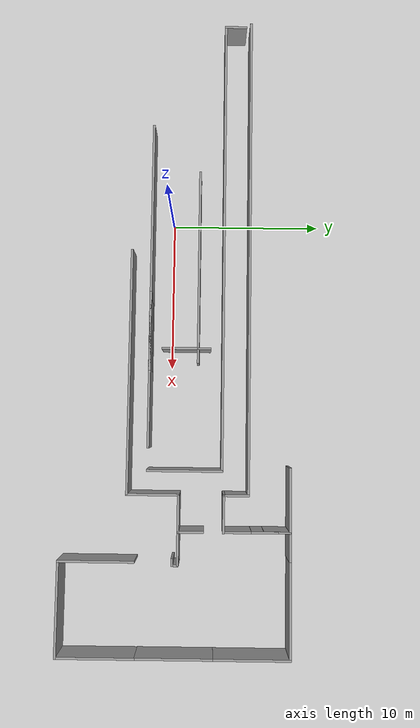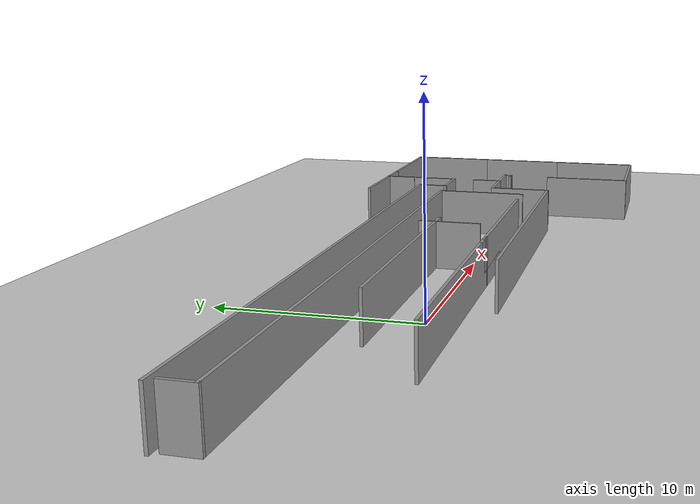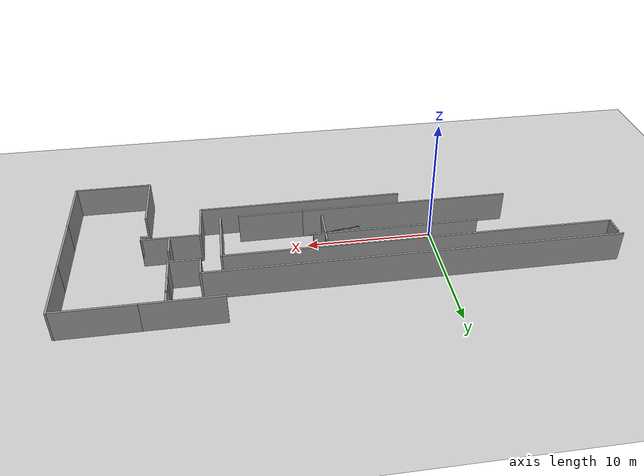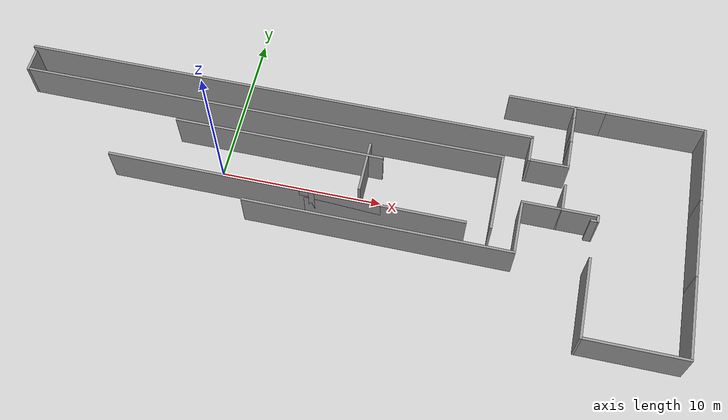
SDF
<sdf version="1.6">
 <world name="default">
  <model name="ground_plane">
   <static>1</static>
   <link name="link">
    <collision name="collision">
     <geometry><plane><normal>0 0 1</normal><size>100 100</size></plane></geometry>
     <surface><friction><ode><mu>100</mu><mu2>50</mu2></ode></friction></surface>
    </collision>
    <visual name="visual">
     <cast_shadows>0</cast_shadows>
     <geometry><plane><normal>0 0 1</normal><size>100 100</size></plane></geometry>
     <material>
      <script><uri>file://media/materials/scripts/gazebo.material</uri><name>Gazebo/Grey</name></script>
     </material>
    </visual>
   </link>
  </model>
  <model name="Untitled">
   <link name="Wall_20">
    <pose>4.30407 -0.225441 0 0 -0 1.5708</pose>
    <visual name="Wall_20_Visual">
     <pose>0 0 1.25 0 -0 0</pose>
     <geometry><box><size>3.25 0.15 2.5</size></box></geometry>
     <material>
      <script><uri>file://media/materials/scripts/gazebo.material</uri><name>Gazebo/Grey</name></script>
      <ambient>1 1 1 1</ambient>
      <shader type="pixel"/>
      <diffuse>0.7 0.7 0.7 1</diffuse>
      <specular>0.01 0.01 0.01 1</specular>
      <emissive>0 0 0 1</emissive>
     </material>
     <meta><layer>0</layer></meta>
    </visual>
    <collision name="Wall_20_Collision">
     <pose>0 0 1.25 0 -0 0</pose>
     <geometry><box><size>3.25 0.15 2.5</size></box></geometry>
     <surface>
      <friction>
       <ode><mu>1</mu><mu2>1</mu2><fdir1>0 0 0</fdir1><slip1>0</slip1><slip2>0</slip2></ode>
       <torsional>
        <coefficient>1</coefficient>
        <patch_radius>0</patch_radius>
        <surface_radius>0</surface_radius>
        <use_patch_radius>1</use_patch_radius>
        <ode><slip>0</slip></ode>
       </torsional>
      </friction>
      <bounce><restitution_coefficient>0</restitution_coefficient><threshold>1e+06</threshold></bounce>
      <contact>
       <collide_without_contact>0</collide_without_contact>
       <collide_without_contact_bitmask>1</collide_without_contact_bitmask>
       <collide_bitmask>1</collide_bitmask>
       <ode>
        <soft_cfm>0</soft_cfm>
        <soft_erp>0.2</soft_erp>
        <kp>1e+13</kp>
        <kd>1</kd>
        <max_vel>0.01</max_vel>
        <min_depth>0</min_depth>
       </ode>
       <bullet>
        <split_impulse>1</split_impulse>
        <split_impulse_penetration_threshold>-0.01</split_impulse_penetration_threshold>
        <soft_cfm>0</soft_cfm>
        <soft_erp>0.2</soft_erp>
        <kp>1e+13</kp>
        <kd>1</kd>
       </bullet>
      </contact>
     </surface>
    </collision>
   </link>
   <link name="Wall_21">
    <pose>-1.22907 0.549559 0 0 -0 3.14159</pose>
    <visual name="Wall_21_Visual">
     <pose>0 0 1.25 0 -0 0</pose>
     <geometry><box><size>13 0.15 2.5</size></box></geometry>
     <material>
      <script><uri>file://media/materials/scripts/gazebo.material</uri><name>Gazebo/Grey</name></script>
      <ambient>1 1 1 1</ambient>
      <shader type="pixel"/>
      <diffuse>0.7 0.7 0.7 1</diffuse>
      <specular>0.01 0.01 0.01 1</specular>
      <emissive>0 0 0 1</emissive>
     </material>
     <meta><layer>0</layer></meta>
    </visual>
    <collision name="Wall_21_Collision">
     <pose>0 0 1.25 0 -0 0</pose>
     <geometry><box><size>13 0.15 2.5</size></box></geometry>
     <surface>
      <friction>
       <ode><mu>1</mu><mu2>1</mu2><fdir1>0 0 0</fdir1><slip1>0</slip1><slip2>0</slip2></ode>
       <torsional>
        <coefficient>1</coefficient>
        <patch_radius>0</patch_radius>
        <surface_radius>0</surface_radius>
        <use_patch_radius>1</use_patch_radius>
        <ode><slip>0</slip></ode>
       </torsional>
      </friction>
      <bounce><restitution_coefficient>0</restitution_coefficient><threshold>1e+06</threshold></bounce>
      <contact>
       <collide_without_contact>0</collide_without_contact>
       <collide_without_contact_bitmask>1</collide_without_contact_bitmask>
       <collide_bitmask>1</collide_bitmask>
       <ode>
        <soft_cfm>0</soft_cfm>
        <soft_erp>0.2</soft_erp>
        <kp>1e+13</kp>
        <kd>1</kd>
        <max_vel>0.01</max_vel>
        <min_depth>0</min_depth>
       </ode>
       <bullet>
        <split_impulse>1</split_impulse>
        <split_impulse_penetration_threshold>-0.01</split_impulse_penetration_threshold>
        <soft_cfm>0</soft_cfm>
        <soft_erp>0.2</soft_erp>
        <kp>1e+13</kp>
        <kd>1</kd>
       </bullet>
      </contact>
     </surface>
    </collision>
   </link>
   <link name="Wall_24">
    <pose>-4.22907 -2.65044 0 0 -0 0</pose>
    <visual name="Wall_24_Visual_1">
     <pose>5.82444 0 1.25 0 -0 0</pose>
     <geometry><box><size>0.351111 0.15 2.5</size></box></geometry>
     <material>
      <script><uri>file://media/materials/scripts/gazebo.material</uri><name>Gazebo/Grey</name></script>
      <ambient>1 1 1 1</ambient>
      <shader type="pixel"/>
      <diffuse>0.7 0.7 0.7 1</diffuse>
      <specular>0.01 0.01 0.01 1</specular>
      <emissive>0 0 0 1</emissive>
     </material>
     <meta><layer>0</layer></meta>
    </visual>
    <visual name="Wall_24_Visual_2">
     <pose>5.19889 0 2.25 0 -0 0</pose>
     <geometry><box><size>0.9 0.15 0.5</size></box></geometry>
     <material>
      <script><uri>file://media/materials/scripts/gazebo.material</uri><name>Gazebo/Grey</name></script>
      <ambient>1 1 1 1</ambient>
      <shader type="pixel"/>
      <diffuse>0.7 0.7 0.7 1</diffuse>
      <specular>0.01 0.01 0.01 1</specular>
      <emissive>0 0 0 1</emissive>
     </material>
     <meta><layer>0</layer></meta>
    </visual>
    <visual name="Wall_24_Visual_0">
     <pose>1.625555 0 1.25 0 -0 0</pose>
     <geometry><box><size>16.74889 0.15 2.5</size></box></geometry>
     <material>
      <script><uri>file://media/materials/scripts/gazebo.material</uri><name>Gazebo/Grey</name></script>
      <ambient>1 1 1 1</ambient>
      <shader type="pixel"/>
      <diffuse>0.7 0.7 0.7 1</diffuse>
      <specular>0.01 0.01 0.01 1</specular>
      <emissive>0 0 0 1</emissive>
     </material>
     <meta><layer>0</layer></meta>
    </visual>
    <collision name="Wall_24_Collision_2">
     <pose>5.19889 0 2.25 0 -0 0</pose>
     <geometry><box><size>0.9 0.15 0.5</size></box></geometry>
     <surface>
      <friction>
       <ode><mu>1</mu><mu2>1</mu2><fdir1>0 0 0</fdir1><slip1>0</slip1><slip2>0</slip2></ode>
       <torsional>
        <coefficient>1</coefficient>
        <patch_radius>0</patch_radius>
        <surface_radius>0</surface_radius>
        <use_patch_radius>1</use_patch_radius>
        <ode><slip>0</slip></ode>
       </torsional>
      </friction>
      <bounce><restitution_coefficient>0</restitution_coefficient><threshold>1e+06</threshold></bounce>
      <contact>
       <collide_without_contact>0</collide_without_contact>
       <collide_without_contact_bitmask>1</collide_without_contact_bitmask>
       <collide_bitmask>1</collide_bitmask>
       <ode>
        <soft_cfm>0</soft_cfm>
        <soft_erp>0.2</soft_erp>
        <kp>1e+13</kp>
        <kd>1</kd>
        <max_vel>0.01</max_vel>
        <min_depth>0</min_depth>
       </ode>
       <bullet>
        <split_impulse>1</split_impulse>
        <split_impulse_penetration_threshold>-0.01</split_impulse_penetration_threshold>
        <soft_cfm>0</soft_cfm>
        <soft_erp>0.2</soft_erp>
        <kp>1e+13</kp>
        <kd>1</kd>
       </bullet>
      </contact>
     </surface>
    </collision>
    <collision name="Wall_24_Collision_0">
     <pose>1.625555 0 1.25 0 -0 0</pose>
     <geometry><box><size>16.74889 0.15 2.5</size></box></geometry>
     <surface>
      <friction>
       <ode><mu>1</mu><mu2>1</mu2><fdir1>0 0 0</fdir1><slip1>0</slip1><slip2>0</slip2></ode>
       <torsional>
        <coefficient>1</coefficient>
        <patch_radius>0</patch_radius>
        <surface_radius>0</surface_radius>
        <use_patch_radius>1</use_patch_radius>
        <ode><slip>0</slip></ode>
       </torsional>
      </friction>
      <bounce><restitution_coefficient>0</restitution_coefficient><threshold>1e+06</threshold></bounce>
      <contact>
       <collide_without_contact>0</collide_without_contact>
       <collide_without_contact_bitmask>1</collide_without_contact_bitmask>
       <collide_bitmask>1</collide_bitmask>
       <ode>
        <soft_cfm>0</soft_cfm>
        <soft_erp>0.2</soft_erp>
        <kp>1e+13</kp>
        <kd>1</kd>
        <max_vel>0.01</max_vel>
        <min_depth>0</min_depth>
       </ode>
       <bullet>
        <split_impulse>1</split_impulse>
        <split_impulse_penetration_threshold>-0.01</split_impulse_penetration_threshold>
        <soft_cfm>0</soft_cfm>
        <soft_erp>0.2</soft_erp>
        <kp>1e+13</kp>
        <kd>1</kd>
       </bullet>
      </contact>
     </surface>
    </collision>
    <collision name="Wall_24_Collision_1">
     <pose>5.82444 0 1.25 0 -0 0</pose>
     <geometry><box><size>0.351111 0.15 2.5</size></box></geometry>
     <surface>
      <friction>
       <ode><mu>1</mu><mu2>1</mu2><fdir1>0 0 0</fdir1><slip1>0</slip1><slip2>0</slip2></ode>
       <torsional>
        <coefficient>1</coefficient>
        <patch_radius>0</patch_radius>
        <surface_radius>0</surface_radius>
        <use_patch_radius>1</use_patch_radius>
        <ode><slip>0</slip></ode>
       </torsional>
      </friction>
      <bounce><restitution_coefficient>0</restitution_coefficient><threshold>1e+06</threshold></bounce>
      <contact>
       <collide_without_contact>0</collide_without_contact>
       <collide_without_contact_bitmask>1</collide_without_contact_bitmask>
       <collide_bitmask>1</collide_bitmask>
       <ode>
        <soft_cfm>0</soft_cfm>
        <soft_erp>0.2</soft_erp>
        <kp>1e+13</kp>
        <kd>1</kd>
        <max_vel>0.01</max_vel>
        <min_depth>0</min_depth>
       </ode>
       <bullet>
        <split_impulse>1</split_impulse>
        <split_impulse_penetration_threshold>-0.01</split_impulse_penetration_threshold>
        <soft_cfm>0</soft_cfm>
        <soft_erp>0.2</soft_erp>
        <kp>1e+13</kp>
        <kd>1</kd>
       </bullet>
      </contact>
     </surface>
    </collision>
   </link>
   <link name="Wall_30_clone">
    <pose>21.1612 -8.29144 0 0 -0 0</pose>
    <visual name="Wall_30_Visual">
     <pose>0 0 1.25 0 -0 0</pose>
     <geometry><box><size>6 0.15 2.5</size></box></geometry>
     <material>
      <script><uri>file://media/materials/scripts/gazebo.material</uri><name>Gazebo/Grey</name></script>
      <ambient>1 1 1 1</ambient>
      <shader type="pixel"/>
      <diffuse>0.7 0.7 0.7 1</diffuse>
      <specular>0.01 0.01 0.01 1</specular>
      <emissive>0 0 0 1</emissive>
     </material>
     <meta><layer>0</layer></meta>
    </visual>
    <collision name="Wall_30_Collision">
     <pose>0 0 1.25 0 -0 0</pose>
     <geometry><box><size>6 0.15 2.5</size></box></geometry>
     <surface>
      <friction>
       <ode><mu>1</mu><mu2>1</mu2><fdir1>0 0 0</fdir1><slip1>0</slip1><slip2>0</slip2></ode>
       <torsional>
        <coefficient>1</coefficient>
        <patch_radius>0</patch_radius>
        <surface_radius>0</surface_radius>
        <use_patch_radius>1</use_patch_radius>
        <ode><slip>0</slip></ode>
       </torsional>
      </friction>
      <bounce><restitution_coefficient>0</restitution_coefficient><threshold>1e+06</threshold></bounce>
      <contact>
       <collide_without_contact>0</collide_without_contact>
       <collide_without_contact_bitmask>1</collide_without_contact_bitmask>
       <collide_bitmask>1</collide_bitmask>
       <ode>
        <soft_cfm>0</soft_cfm>
        <soft_erp>0.2</soft_erp>
        <kp>1e+13</kp>
        <kd>1</kd>
        <max_vel>0.01</max_vel>
        <min_depth>0</min_depth>
       </ode>
       <bullet>
        <split_impulse>1</split_impulse>
        <split_impulse_penetration_threshold>-0.01</split_impulse_penetration_threshold>
        <soft_cfm>0</soft_cfm>
        <soft_erp>0.2</soft_erp>
        <kp>1e+13</kp>
        <kd>1</kd>
       </bullet>
      </contact>
     </surface>
    </collision>
   </link>
   <link name="Wall_30_clone_clone">
    <pose>21.0171 6.65699 0 0 -0 0</pose>
    <visual name="Wall_30_Visual">
     <pose>0 0 1.25 0 -0 0</pose>
     <geometry><box><size>6 0.15 2.5</size></box></geometry>
     <material>
      <script><uri>file://media/materials/scripts/gazebo.material</uri><name>Gazebo/Grey</name></script>
      <ambient>1 1 1 1</ambient>
      <shader type="pixel"/>
      <diffuse>0.7 0.7 0.7 1</diffuse>
      <specular>0.01 0.01 0.01 1</specular>
      <emissive>0 0 0 1</emissive>
     </material>
     <meta><layer>0</layer></meta>
    </visual>
    <collision name="Wall_30_Collision">
     <pose>0 0 1.25 0 -0 0</pose>
     <geometry><box><size>6 0.15 2.5</size></box></geometry>
     <surface>
      <friction>
       <ode><mu>1</mu><mu2>1</mu2><fdir1>0 0 0</fdir1><slip1>0</slip1><slip2>0</slip2></ode>
       <torsional>
        <coefficient>1</coefficient>
        <patch_radius>0</patch_radius>
        <surface_radius>0</surface_radius>
        <use_patch_radius>1</use_patch_radius>
        <ode><slip>0</slip></ode>
       </torsional>
      </friction>
      <bounce><restitution_coefficient>0</restitution_coefficient><threshold>1e+06</threshold></bounce>
      <contact>
       <collide_without_contact>0</collide_without_contact>
       <collide_without_contact_bitmask>1</collide_without_contact_bitmask>
       <collide_bitmask>1</collide_bitmask>
       <ode>
        <soft_cfm>0</soft_cfm>
        <soft_erp>0.2</soft_erp>
        <kp>1e+13</kp>
        <kd>1</kd>
        <max_vel>0.01</max_vel>
        <min_depth>0</min_depth>
       </ode>
       <bullet>
        <split_impulse>1</split_impulse>
        <split_impulse_penetration_threshold>-0.01</split_impulse_penetration_threshold>
        <soft_cfm>0</soft_cfm>
        <soft_erp>0.2</soft_erp>
        <kp>1e+13</kp>
        <kd>1</kd>
       </bullet>
      </contact>
     </surface>
    </collision>
   </link>
   <link name="Wall_30_clone_clone_0">
    <pose>15.0202 6.65284 0 0 -0 0</pose>
    <visual name="Wall_30_Visual">
     <pose>0 0 1.25 0 -0 0</pose>
     <geometry><box><size>6 0.15 2.5</size></box></geometry>
     <material>
      <script><uri>file://media/materials/scripts/gazebo.material</uri><name>Gazebo/Grey</name></script>
      <ambient>1 1 1 1</ambient>
      <shader type="pixel"/>
      <diffuse>0.7 0.7 0.7 1</diffuse>
      <specular>0.01 0.01 0.01 1</specular>
      <emissive>0 0 0 1</emissive>
     </material>
     <meta><layer>0</layer></meta>
    </visual>
    <collision name="Wall_30_Collision">
     <pose>0 0 1.25 0 -0 0</pose>
     <geometry><box><size>6 0.15 2.5</size></box></geometry>
     <surface>
      <friction>
       <ode><mu>1</mu><mu2>1</mu2><fdir1>0 0 0</fdir1><slip1>0</slip1><slip2>0</slip2></ode>
       <torsional>
        <coefficient>1</coefficient>
        <patch_radius>0</patch_radius>
        <surface_radius>0</surface_radius>
        <use_patch_radius>1</use_patch_radius>
        <ode><slip>0</slip></ode>
       </torsional>
      </friction>
      <bounce><restitution_coefficient>0</restitution_coefficient><threshold>1e+06</threshold></bounce>
      <contact>
       <collide_without_contact>0</collide_without_contact>
       <collide_without_contact_bitmask>1</collide_without_contact_bitmask>
       <collide_bitmask>1</collide_bitmask>
       <ode>
        <soft_cfm>0</soft_cfm>
        <soft_erp>0.2</soft_erp>
        <kp>1e+13</kp>
        <kd>1</kd>
        <max_vel>0.01</max_vel>
        <min_depth>0</min_depth>
       </ode>
       <bullet>
        <split_impulse>1</split_impulse>
        <split_impulse_penetration_threshold>-0.01</split_impulse_penetration_threshold>
        <soft_cfm>0</soft_cfm>
        <soft_erp>0.2</soft_erp>
        <kp>1e+13</kp>
        <kd>1</kd>
       </bullet>
      </contact>
     </surface>
    </collision>
   </link>
   <link name="Wall_41">
    <pose>5.78827 -3.96327 0 0 -0 0</pose>
    <visual name="Wall_41_Visual">
     <pose>0 0 1.25 0 -0 0</pose>
     <geometry><box><size>16.25 0.15 2.5</size></box></geometry>
     <material>
      <script><uri>file://media/materials/scripts/gazebo.material</uri><name>Gazebo/Grey</name></script>
      <ambient>1 1 1 1</ambient>
      <shader type="pixel"/>
      <diffuse>0.7 0.7 0.7 1</diffuse>
      <specular>0.01 0.01 0.01 1</specular>
      <emissive>0 0 0 1</emissive>
     </material>
     <meta><layer>0</layer></meta>
    </visual>
    <collision name="Wall_41_Collision">
     <pose>0 0 1.25 0 -0 0</pose>
     <geometry><box><size>16.25 0.15 2.5</size></box></geometry>
     <surface>
      <friction>
       <ode><mu>1</mu><mu2>1</mu2><fdir1>0 0 0</fdir1><slip1>0</slip1><slip2>0</slip2></ode>
       <torsional>
        <coefficient>1</coefficient>
        <patch_radius>0</patch_radius>
        <surface_radius>0</surface_radius>
        <use_patch_radius>1</use_patch_radius>
        <ode><slip>0</slip></ode>
       </torsional>
      </friction>
      <bounce><restitution_coefficient>0</restitution_coefficient><threshold>1e+06</threshold></bounce>
      <contact>
       <collide_without_contact>0</collide_without_contact>
       <collide_without_contact_bitmask>1</collide_without_contact_bitmask>
       <collide_bitmask>1</collide_bitmask>
       <ode>
        <soft_cfm>0</soft_cfm>
        <soft_erp>0.2</soft_erp>
        <kp>1e+13</kp>
        <kd>1</kd>
        <max_vel>0.01</max_vel>
        <min_depth>0</min_depth>
       </ode>
       <bullet>
        <split_impulse>1</split_impulse>
        <split_impulse_penetration_threshold>-0.01</split_impulse_penetration_threshold>
        <soft_cfm>0</soft_cfm>
        <soft_erp>0.2</soft_erp>
        <kp>1e+13</kp>
        <kd>1</kd>
       </bullet>
      </contact>
     </surface>
    </collision>
   </link>
   <link name="Wall_42">
    <pose>13.8383 -2.28827 0 0 -0 1.5708</pose>
    <visual name="Wall_42_Visual">
     <pose>0 0 1.25 0 -0 0</pose>
     <geometry><box><size>3.5 0.15 2.5</size></box></geometry>
     <material>
      <script><uri>file://media/materials/scripts/gazebo.material</uri><name>Gazebo/Grey</name></script>
      <ambient>1 1 1 1</ambient>
      <shader type="pixel"/>
      <diffuse>0.7 0.7 0.7 1</diffuse>
      <specular>0.01 0.01 0.01 1</specular>
      <emissive>0 0 0 1</emissive>
     </material>
     <meta><layer>0</layer></meta>
    </visual>
    <collision name="Wall_42_Collision">
     <pose>0 0 1.25 0 -0 0</pose>
     <geometry><box><size>3.5 0.15 2.5</size></box></geometry>
     <surface>
      <friction>
       <ode><mu>1</mu><mu2>1</mu2><fdir1>0 0 0</fdir1><slip1>0</slip1><slip2>0</slip2></ode>
       <torsional>
        <coefficient>1</coefficient>
        <patch_radius>0</patch_radius>
        <surface_radius>0</surface_radius>
        <use_patch_radius>1</use_patch_radius>
        <ode><slip>0</slip></ode>
       </torsional>
      </friction>
      <bounce><restitution_coefficient>0</restitution_coefficient><threshold>1e+06</threshold></bounce>
      <contact>
       <collide_without_contact>0</collide_without_contact>
       <collide_without_contact_bitmask>1</collide_without_contact_bitmask>
       <collide_bitmask>1</collide_bitmask>
       <ode>
        <soft_cfm>0</soft_cfm>
        <soft_erp>0.2</soft_erp>
        <kp>1e+13</kp>
        <kd>1</kd>
        <max_vel>0.01</max_vel>
        <min_depth>0</min_depth>
       </ode>
       <bullet>
        <split_impulse>1</split_impulse>
        <split_impulse_penetration_threshold>-0.01</split_impulse_penetration_threshold>
        <soft_cfm>0</soft_cfm>
        <soft_erp>0.2</soft_erp>
        <kp>1e+13</kp>
        <kd>1</kd>
       </bullet>
      </contact>
     </surface>
    </collision>
   </link>
   <link name="Wall_43">
    <pose>15.0133 -0.613272 0 0 -0 0</pose>
    <visual name="Wall_43_Visual">
     <pose>0 0 1.25 0 -0 0</pose>
     <geometry><box><size>2.5 0.15 2.5</size></box></geometry>
     <material>
      <script><uri>file://media/materials/scripts/gazebo.material</uri><name>Gazebo/Grey</name></script>
      <ambient>1 1 1 1</ambient>
      <shader type="pixel"/>
      <diffuse>0.7 0.7 0.7 1</diffuse>
      <specular>0.01 0.01 0.01 1</specular>
      <emissive>0 0 0 1</emissive>
     </material>
     <meta><layer>0</layer></meta>
    </visual>
    <collision name="Wall_43_Collision">
     <pose>0 0 1.25 0 -0 0</pose>
     <geometry><box><size>2.5 0.15 2.5</size></box></geometry>
     <surface>
      <friction>
       <ode><mu>1</mu><mu2>1</mu2><fdir1>0 0 0</fdir1><slip1>0</slip1><slip2>0</slip2></ode>
       <torsional>
        <coefficient>1</coefficient>
        <patch_radius>0</patch_radius>
        <surface_radius>0</surface_radius>
        <use_patch_radius>1</use_patch_radius>
        <ode><slip>0</slip></ode>
       </torsional>
      </friction>
      <bounce><restitution_coefficient>0</restitution_coefficient><threshold>1e+06</threshold></bounce>
      <contact>
       <collide_without_contact>0</collide_without_contact>
       <collide_without_contact_bitmask>1</collide_without_contact_bitmask>
       <collide_bitmask>1</collide_bitmask>
       <ode>
        <soft_cfm>0</soft_cfm>
        <soft_erp>0.2</soft_erp>
        <kp>1e+13</kp>
        <kd>1</kd>
        <max_vel>0.01</max_vel>
        <min_depth>0</min_depth>
       </ode>
       <bullet>
        <split_impulse>1</split_impulse>
        <split_impulse_penetration_threshold>-0.01</split_impulse_penetration_threshold>
        <soft_cfm>0</soft_cfm>
        <soft_erp>0.2</soft_erp>
        <kp>1e+13</kp>
        <kd>1</kd>
       </bullet>
      </contact>
     </surface>
    </collision>
   </link>
   <link name="Wall_44">
    <pose>16.1883 0.186728 0 0 -0 1.5708</pose>
    <visual name="Wall_44_Visual">
     <pose>0 0 1.25 0 -0 0</pose>
     <geometry><box><size>1.75 0.15 2.5</size></box></geometry>
     <material>
      <script><uri>file://media/materials/scripts/gazebo.material</uri><name>Gazebo/Grey</name></script>
      <ambient>1 1 1 1</ambient>
      <shader type="pixel"/>
      <diffuse>0.7 0.7 0.7 1</diffuse>
      <specular>0.01 0.01 0.01 1</specular>
      <emissive>0 0 0 1</emissive>
     </material>
     <meta><layer>0</layer></meta>
    </visual>
    <collision name="Wall_44_Collision">
     <pose>0 0 1.25 0 -0 0</pose>
     <geometry><box><size>1.75 0.15 2.5</size></box></geometry>
     <surface>
      <friction>
       <ode><mu>1</mu><mu2>1</mu2><fdir1>0 0 0</fdir1><slip1>0</slip1><slip2>0</slip2></ode>
       <torsional>
        <coefficient>1</coefficient>
        <patch_radius>0</patch_radius>
        <surface_radius>0</surface_radius>
        <use_patch_radius>1</use_patch_radius>
        <ode><slip>0</slip></ode>
       </torsional>
      </friction>
      <bounce><restitution_coefficient>0</restitution_coefficient><threshold>1e+06</threshold></bounce>
      <contact>
       <collide_without_contact>0</collide_without_contact>
       <collide_without_contact_bitmask>1</collide_without_contact_bitmask>
       <collide_bitmask>1</collide_bitmask>
       <ode>
        <soft_cfm>0</soft_cfm>
        <soft_erp>0.2</soft_erp>
        <kp>1e+13</kp>
        <kd>1</kd>
        <max_vel>0.01</max_vel>
        <min_depth>0</min_depth>
       </ode>
       <bullet>
        <split_impulse>1</split_impulse>
        <split_impulse_penetration_threshold>-0.01</split_impulse_penetration_threshold>
        <soft_cfm>0</soft_cfm>
        <soft_erp>0.2</soft_erp>
        <kp>1e+13</kp>
        <kd>1</kd>
       </bullet>
      </contact>
     </surface>
    </collision>
   </link>
   <link name="Wall_46">
    <pose>17.2383 -0.613272 0 0 -0 0</pose>
    <visual name="Wall_46_Visual">
     <pose>0 0 1.25 0 -0 0</pose>
     <geometry><box><size>2.25 0.15 2.5</size></box></geometry>
     <material>
      <script><uri>file://media/materials/scripts/gazebo.material</uri><name>Gazebo/Grey</name></script>
      <ambient>1 1 1 1</ambient>
      <shader type="pixel"/>
      <diffuse>0.7 0.7 0.7 1</diffuse>
      <specular>0.01 0.01 0.01 1</specular>
      <emissive>0 0 0 1</emissive>
     </material>
     <meta><layer>0</layer></meta>
    </visual>
    <collision name="Wall_46_Collision">
     <pose>0 0 1.25 0 -0 0</pose>
     <geometry><box><size>2.25 0.15 2.5</size></box></geometry>
     <surface>
      <friction>
       <ode><mu>1</mu><mu2>1</mu2><fdir1>0 0 0</fdir1><slip1>0</slip1><slip2>0</slip2></ode>
       <torsional>
        <coefficient>1</coefficient>
        <patch_radius>0</patch_radius>
        <surface_radius>0</surface_radius>
        <use_patch_radius>1</use_patch_radius>
        <ode><slip>0</slip></ode>
       </torsional>
      </friction>
      <bounce><restitution_coefficient>0</restitution_coefficient><threshold>1e+06</threshold></bounce>
      <contact>
       <collide_without_contact>0</collide_without_contact>
       <collide_without_contact_bitmask>1</collide_without_contact_bitmask>
       <collide_bitmask>1</collide_bitmask>
       <ode>
        <soft_cfm>0</soft_cfm>
        <soft_erp>0.2</soft_erp>
        <kp>1e+13</kp>
        <kd>1</kd>
        <max_vel>0.01</max_vel>
        <min_depth>0</min_depth>
       </ode>
       <bullet>
        <split_impulse>1</split_impulse>
        <split_impulse_penetration_threshold>-0.01</split_impulse_penetration_threshold>
        <soft_cfm>0</soft_cfm>
        <soft_erp>0.2</soft_erp>
        <kp>1e+13</kp>
        <kd>1</kd>
       </bullet>
      </contact>
     </surface>
    </collision>
   </link>
   <link name="Wall_47">
    <pose>18.2883 -0.788272 0 0 0 -1.5708</pose>
    <visual name="Wall_47_Visual">
     <pose>0 0 1.25 0 -0 0</pose>
     <geometry><box><size>0.5 0.15 2.5</size></box></geometry>
     <material>
      <script><uri>file://media/materials/scripts/gazebo.material</uri><name>Gazebo/Grey</name></script>
      <ambient>1 1 1 1</ambient>
      <shader type="pixel"/>
      <diffuse>0.7 0.7 0.7 1</diffuse>
      <specular>0.01 0.01 0.01 1</specular>
      <emissive>0 0 0 1</emissive>
     </material>
     <meta><layer>0</layer></meta>
    </visual>
    <collision name="Wall_47_Collision">
     <pose>0 0 1.25 0 -0 0</pose>
     <geometry><box><size>0.5 0.15 2.5</size></box></geometry>
     <surface>
      <friction>
       <ode><mu>1</mu><mu2>1</mu2><fdir1>0 0 0</fdir1><slip1>0</slip1><slip2>0</slip2></ode>
       <torsional>
        <coefficient>1</coefficient>
        <patch_radius>0</patch_radius>
        <surface_radius>0</surface_radius>
        <use_patch_radius>1</use_patch_radius>
        <ode><slip>0</slip></ode>
       </torsional>
      </friction>
      <bounce><restitution_coefficient>0</restitution_coefficient><threshold>1e+06</threshold></bounce>
      <contact>
       <collide_without_contact>0</collide_without_contact>
       <collide_without_contact_bitmask>1</collide_without_contact_bitmask>
       <collide_bitmask>1</collide_bitmask>
       <ode>
        <soft_cfm>0</soft_cfm>
        <soft_erp>0.2</soft_erp>
        <kp>1e+13</kp>
        <kd>1</kd>
        <max_vel>0.01</max_vel>
        <min_depth>0</min_depth>
       </ode>
       <bullet>
        <split_impulse>1</split_impulse>
        <split_impulse_penetration_threshold>-0.01</split_impulse_penetration_threshold>
        <soft_cfm>0</soft_cfm>
        <soft_erp>0.2</soft_erp>
        <kp>1e+13</kp>
        <kd>1</kd>
       </bullet>
      </contact>
     </surface>
    </collision>
   </link>
   <link name="Wall_48">
    <pose>18.1133 -0.963271 0 0 -0 3.14159</pose>
    <visual name="Wall_48_Visual">
     <pose>0 0 1.25 0 -0 0</pose>
     <geometry><box><size>0.5 0.15 2.5</size></box></geometry>
     <material>
      <script><uri>file://media/materials/scripts/gazebo.material</uri><name>Gazebo/Grey</name></script>
      <ambient>1 1 1 1</ambient>
      <shader type="pixel"/>
      <diffuse>0.7 0.7 0.7 1</diffuse>
      <specular>0.01 0.01 0.01 1</specular>
      <emissive>0 0 0 1</emissive>
     </material>
     <meta><layer>0</layer></meta>
    </visual>
    <collision name="Wall_48_Collision">
     <pose>0 0 1.25 0 -0 0</pose>
     <geometry><box><size>0.5 0.15 2.5</size></box></geometry>
     <surface>
      <friction>
       <ode><mu>1</mu><mu2>1</mu2><fdir1>0 0 0</fdir1><slip1>0</slip1><slip2>0</slip2></ode>
       <torsional>
        <coefficient>1</coefficient>
        <patch_radius>0</patch_radius>
        <surface_radius>0</surface_radius>
        <use_patch_radius>1</use_patch_radius>
        <ode><slip>0</slip></ode>
       </torsional>
      </friction>
      <bounce><restitution_coefficient>0</restitution_coefficient><threshold>1e+06</threshold></bounce>
      <contact>
       <collide_without_contact>0</collide_without_contact>
       <collide_without_contact_bitmask>1</collide_without_contact_bitmask>
       <collide_bitmask>1</collide_bitmask>
       <ode>
        <soft_cfm>0</soft_cfm>
        <soft_erp>0.2</soft_erp>
        <kp>1e+13</kp>
        <kd>1</kd>
        <max_vel>0.01</max_vel>
        <min_depth>0</min_depth>
       </ode>
       <bullet>
        <split_impulse>1</split_impulse>
        <split_impulse_penetration_threshold>-0.01</split_impulse_penetration_threshold>
        <soft_cfm>0</soft_cfm>
        <soft_erp>0.2</soft_erp>
        <kp>1e+13</kp>
        <kd>1</kd>
       </bullet>
      </contact>
     </surface>
    </collision>
   </link>
   <link name="Wall_52">
    <pose>15.0133 2.33673 0 0 -0 3.14159</pose>
    <visual name="Wall_52_Visual">
     <pose>0 0 1.25 0 -0 0</pose>
     <geometry><box><size>2.5 0.15 2.5</size></box></geometry>
     <material>
      <script><uri>file://media/materials/scripts/gazebo.material</uri><name>Gazebo/Grey</name></script>
      <ambient>1 1 1 1</ambient>
      <shader type="pixel"/>
      <diffuse>0.7 0.7 0.7 1</diffuse>
      <specular>0.01 0.01 0.01 1</specular>
      <emissive>0 0 0 1</emissive>
     </material>
     <meta><layer>0</layer></meta>
    </visual>
    <collision name="Wall_52_Collision">
     <pose>0 0 1.25 0 -0 0</pose>
     <geometry><box><size>2.5 0.15 2.5</size></box></geometry>
     <surface>
      <friction>
       <ode><mu>1</mu><mu2>1</mu2><fdir1>0 0 0</fdir1><slip1>0</slip1><slip2>0</slip2></ode>
       <torsional>
        <coefficient>1</coefficient>
        <patch_radius>0</patch_radius>
        <surface_radius>0</surface_radius>
        <use_patch_radius>1</use_patch_radius>
        <ode><slip>0</slip></ode>
       </torsional>
      </friction>
      <bounce><restitution_coefficient>0</restitution_coefficient><threshold>1e+06</threshold></bounce>
      <contact>
       <collide_without_contact>0</collide_without_contact>
       <collide_without_contact_bitmask>1</collide_without_contact_bitmask>
       <collide_bitmask>1</collide_bitmask>
       <ode>
        <soft_cfm>0</soft_cfm>
        <soft_erp>0.2</soft_erp>
        <kp>1e+13</kp>
        <kd>1</kd>
        <max_vel>0.01</max_vel>
        <min_depth>0</min_depth>
       </ode>
       <bullet>
        <split_impulse>1</split_impulse>
        <split_impulse_penetration_threshold>-0.01</split_impulse_penetration_threshold>
        <soft_cfm>0</soft_cfm>
        <soft_erp>0.2</soft_erp>
        <kp>1e+13</kp>
        <kd>1</kd>
       </bullet>
      </contact>
     </surface>
    </collision>
   </link>
   <link name="Wall_53">
    <pose>13.8383 3.13673 0 0 -0 1.5708</pose>
    <visual name="Wall_53_Visual">
     <pose>0 0 1.25 0 -0 0</pose>
     <geometry><box><size>1.75 0.15 2.5</size></box></geometry>
     <material>
      <script><uri>file://media/materials/scripts/gazebo.material</uri><name>Gazebo/Grey</name></script>
      <ambient>1 1 1 1</ambient>
      <shader type="pixel"/>
      <diffuse>0.7 0.7 0.7 1</diffuse>
      <specular>0.01 0.01 0.01 1</specular>
      <emissive>0 0 0 1</emissive>
     </material>
     <meta><layer>0</layer></meta>
    </visual>
    <collision name="Wall_53_Collision">
     <pose>0 0 1.25 0 -0 0</pose>
     <geometry><box><size>1.75 0.15 2.5</size></box></geometry>
     <surface>
      <friction>
       <ode><mu>1</mu><mu2>1</mu2><fdir1>0 0 0</fdir1><slip1>0</slip1><slip2>0</slip2></ode>
       <torsional>
        <coefficient>1</coefficient>
        <patch_radius>0</patch_radius>
        <surface_radius>0</surface_radius>
        <use_patch_radius>1</use_patch_radius>
        <ode><slip>0</slip></ode>
       </torsional>
      </friction>
      <bounce><restitution_coefficient>0</restitution_coefficient><threshold>1e+06</threshold></bounce>
      <contact>
       <collide_without_contact>0</collide_without_contact>
       <collide_without_contact_bitmask>1</collide_without_contact_bitmask>
       <collide_bitmask>1</collide_bitmask>
       <ode>
        <soft_cfm>0</soft_cfm>
        <soft_erp>0.2</soft_erp>
        <kp>1e+13</kp>
        <kd>1</kd>
        <max_vel>0.01</max_vel>
        <min_depth>0</min_depth>
       </ode>
       <bullet>
        <split_impulse>1</split_impulse>
        <split_impulse_penetration_threshold>-0.01</split_impulse_penetration_threshold>
        <soft_cfm>0</soft_cfm>
        <soft_erp>0.2</soft_erp>
        <kp>1e+13</kp>
        <kd>1</kd>
       </bullet>
      </contact>
     </surface>
    </collision>
   </link>
   <link name="Wall_53_clone">
    <pose>16.174 3.27406 0 0 -0 1.5708</pose>
    <visual name="Wall_53_Visual">
     <pose>0 0 1.25 0 -0 0</pose>
     <geometry><box><size>1.75 0.15 2.5</size></box></geometry>
     <material>
      <script><uri>file://media/materials/scripts/gazebo.material</uri><name>Gazebo/Grey</name></script>
      <ambient>1 1 1 1</ambient>
      <shader type="pixel"/>
      <diffuse>0.7 0.7 0.7 1</diffuse>
      <specular>0.01 0.01 0.01 1</specular>
      <emissive>0 0 0 1</emissive>
     </material>
     <meta><layer>0</layer></meta>
    </visual>
    <collision name="Wall_53_Collision">
     <pose>0 0 1.25 0 -0 0</pose>
     <geometry><box><size>1.75 0.15 2.5</size></box></geometry>
     <surface>
      <friction>
       <ode><mu>1</mu><mu2>1</mu2><fdir1>0 0 0</fdir1><slip1>0</slip1><slip2>0</slip2></ode>
       <torsional>
        <coefficient>1</coefficient>
        <patch_radius>0</patch_radius>
        <surface_radius>0</surface_radius>
        <use_patch_radius>1</use_patch_radius>
        <ode><slip>0</slip></ode>
       </torsional>
      </friction>
      <bounce><restitution_coefficient>0</restitution_coefficient><threshold>1e+06</threshold></bounce>
      <contact>
       <collide_without_contact>0</collide_without_contact>
       <collide_without_contact_bitmask>1</collide_without_contact_bitmask>
       <collide_bitmask>1</collide_bitmask>
       <ode>
        <soft_cfm>0</soft_cfm>
        <soft_erp>0.2</soft_erp>
        <kp>1e+13</kp>
        <kd>1</kd>
        <max_vel>0.01</max_vel>
        <min_depth>0</min_depth>
       </ode>
       <bullet>
        <split_impulse>1</split_impulse>
        <split_impulse_penetration_threshold>-0.01</split_impulse_penetration_threshold>
        <soft_cfm>0</soft_cfm>
        <soft_erp>0.2</soft_erp>
        <kp>1e+13</kp>
        <kd>1</kd>
       </bullet>
      </contact>
     </surface>
    </collision>
   </link>
   <link name="Wall_53_clone_0">
    <pose>16.1653 5.00274 0 0 -0 1.5708</pose>
    <visual name="Wall_53_Visual">
     <pose>0 0 1.25 0 -0 0</pose>
     <geometry><box><size>1.75 0.15 2.5</size></box></geometry>
     <material>
      <script><uri>file://media/materials/scripts/gazebo.material</uri><name>Gazebo/Grey</name></script>
      <ambient>1 1 1 1</ambient>
      <shader type="pixel"/>
      <diffuse>0.7 0.7 0.7 1</diffuse>
      <specular>0.01 0.01 0.01 1</specular>
      <emissive>0 0 0 1</emissive>
     </material>
     <meta><layer>0</layer></meta>
    </visual>
    <collision name="Wall_53_Collision">
     <pose>0 0 1.25 0 -0 0</pose>
     <geometry><box><size>1.75 0.15 2.5</size></box></geometry>
     <surface>
      <friction>
       <ode><mu>1</mu><mu2>1</mu2><fdir1>0 0 0</fdir1><slip1>0</slip1><slip2>0</slip2></ode>
       <torsional>
        <coefficient>1</coefficient>
        <patch_radius>0</patch_radius>
        <surface_radius>0</surface_radius>
        <use_patch_radius>1</use_patch_radius>
        <ode><slip>0</slip></ode>
       </torsional>
      </friction>
      <bounce><restitution_coefficient>0</restitution_coefficient><threshold>1e+06</threshold></bounce>
      <contact>
       <collide_without_contact>0</collide_without_contact>
       <collide_without_contact_bitmask>1</collide_without_contact_bitmask>
       <collide_bitmask>1</collide_bitmask>
       <ode>
        <soft_cfm>0</soft_cfm>
        <soft_erp>0.2</soft_erp>
        <kp>1e+13</kp>
        <kd>1</kd>
        <max_vel>0.01</max_vel>
        <min_depth>0</min_depth>
       </ode>
       <bullet>
        <split_impulse>1</split_impulse>
        <split_impulse_penetration_threshold>-0.01</split_impulse_penetration_threshold>
        <soft_cfm>0</soft_cfm>
        <soft_erp>0.2</soft_erp>
        <kp>1e+13</kp>
        <kd>1</kd>
       </bullet>
      </contact>
     </surface>
    </collision>
   </link>
   <link name="Wall_53_clone_1">
    <pose>16.1605 5.81035 0 0 -0 1.5708</pose>
    <visual name="Wall_53_Visual">
     <pose>0 0 1.25 0 -0 0</pose>
     <geometry><box><size>1.75 0.15 2.5</size></box></geometry>
     <material>
      <script><uri>file://media/materials/scripts/gazebo.material</uri><name>Gazebo/Grey</name></script>
      <ambient>1 1 1 1</ambient>
      <shader type="pixel"/>
      <diffuse>0.7 0.7 0.7 1</diffuse>
      <specular>0.01 0.01 0.01 1</specular>
      <emissive>0 0 0 1</emissive>
     </material>
     <meta><layer>0</layer></meta>
    </visual>
    <collision name="Wall_53_Collision">
     <pose>0 0 1.25 0 -0 0</pose>
     <geometry><box><size>1.75 0.15 2.5</size></box></geometry>
     <surface>
      <friction>
       <ode><mu>1</mu><mu2>1</mu2><fdir1>0 0 0</fdir1><slip1>0</slip1><slip2>0</slip2></ode>
       <torsional>
        <coefficient>1</coefficient>
        <patch_radius>0</patch_radius>
        <surface_radius>0</surface_radius>
        <use_patch_radius>1</use_patch_radius>
        <ode><slip>0</slip></ode>
       </torsional>
      </friction>
      <bounce><restitution_coefficient>0</restitution_coefficient><threshold>1e+06</threshold></bounce>
      <contact>
       <collide_without_contact>0</collide_without_contact>
       <collide_without_contact_bitmask>1</collide_without_contact_bitmask>
       <collide_bitmask>1</collide_bitmask>
       <ode>
        <soft_cfm>0</soft_cfm>
        <soft_erp>0.2</soft_erp>
        <kp>1e+13</kp>
        <kd>1</kd>
        <max_vel>0.01</max_vel>
        <min_depth>0</min_depth>
       </ode>
       <bullet>
        <split_impulse>1</split_impulse>
        <split_impulse_penetration_threshold>-0.01</split_impulse_penetration_threshold>
        <soft_cfm>0</soft_cfm>
        <soft_erp>0.2</soft_erp>
        <kp>1e+13</kp>
        <kd>1</kd>
       </bullet>
      </contact>
     </surface>
    </collision>
   </link>
   <link name="Wall_54">
    <pose>-2.21173 3.93673 0 0 -0 3.14159</pose>
    <visual name="Wall_54_Visual">
     <pose>0 0 1.25 0 -0 0</pose>
     <geometry><box><size>32.25 0.15 2.5</size></box></geometry>
     <material>
      <script><uri>file://media/materials/scripts/gazebo.material</uri><name>Gazebo/Grey</name></script>
      <ambient>1 1 1 1</ambient>
      <shader type="pixel"/>
      <diffuse>0.7 0.7 0.7 1</diffuse>
      <specular>0.01 0.01 0.01 1</specular>
      <emissive>0 0 0 1</emissive>
     </material>
     <meta><layer>0</layer></meta>
    </visual>
    <collision name="Wall_54_Collision">
     <pose>0 0 1.25 0 -0 0</pose>
     <geometry><box><size>32.25 0.15 2.5</size></box></geometry>
     <surface>
      <friction>
       <ode><mu>1</mu><mu2>1</mu2><fdir1>0 0 0</fdir1><slip1>0</slip1><slip2>0</slip2></ode>
       <torsional>
        <coefficient>1</coefficient>
        <patch_radius>0</patch_radius>
        <surface_radius>0</surface_radius>
        <use_patch_radius>1</use_patch_radius>
        <ode><slip>0</slip></ode>
       </torsional>
      </friction>
      <bounce><restitution_coefficient>0</restitution_coefficient><threshold>1e+06</threshold></bounce>
      <contact>
       <collide_without_contact>0</collide_without_contact>
       <collide_without_contact_bitmask>1</collide_without_contact_bitmask>
       <collide_bitmask>1</collide_bitmask>
       <ode>
        <soft_cfm>0</soft_cfm>
        <soft_erp>0.2</soft_erp>
        <kp>1e+13</kp>
        <kd>1</kd>
        <max_vel>0.01</max_vel>
        <min_depth>0</min_depth>
       </ode>
       <bullet>
        <split_impulse>1</split_impulse>
        <split_impulse_penetration_threshold>-0.01</split_impulse_penetration_threshold>
        <soft_cfm>0</soft_cfm>
        <soft_erp>0.2</soft_erp>
        <kp>1e+13</kp>
        <kd>1</kd>
       </bullet>
      </contact>
     </surface>
    </collision>
   </link>
   <link name="Wall_56">
    <pose>5.99593 -2.65044 0 0 -0 0</pose>
    <visual name="Wall_56_Visual">
     <pose>0 0 1.25 0 -0 0</pose>
     <geometry><box><size>9.75 0.15 2.5</size></box></geometry>
     <material>
      <script><uri>file://media/materials/scripts/gazebo.material</uri><name>Gazebo/Grey</name></script>
      <ambient>1 1 1 1</ambient>
      <shader type="pixel"/>
      <diffuse>0.7 0.7 0.7 1</diffuse>
      <specular>0.01 0.01 0.01 1</specular>
      <emissive>0 0 0 1</emissive>
     </material>
     <meta><layer>0</layer></meta>
    </visual>
    <collision name="Wall_56_Collision">
     <pose>0 0 1.25 0 -0 0</pose>
     <geometry><box><size>9.75 0.15 2.5</size></box></geometry>
     <surface>
      <friction>
       <ode><mu>1</mu><mu2>1</mu2><fdir1>0 0 0</fdir1><slip1>0</slip1><slip2>0</slip2></ode>
       <torsional>
        <coefficient>1</coefficient>
        <patch_radius>0</patch_radius>
        <surface_radius>0</surface_radius>
        <use_patch_radius>1</use_patch_radius>
        <ode><slip>0</slip></ode>
       </torsional>
      </friction>
      <bounce><restitution_coefficient>0</restitution_coefficient><threshold>1e+06</threshold></bounce>
      <contact>
       <collide_without_contact>0</collide_without_contact>
       <collide_without_contact_bitmask>1</collide_without_contact_bitmask>
       <collide_bitmask>1</collide_bitmask>
       <ode>
        <soft_cfm>0</soft_cfm>
        <soft_erp>0.2</soft_erp>
        <kp>1e+13</kp>
        <kd>1</kd>
        <max_vel>0.01</max_vel>
        <min_depth>0</min_depth>
       </ode>
       <bullet>
        <split_impulse>1</split_impulse>
        <split_impulse_penetration_threshold>-0.01</split_impulse_penetration_threshold>
        <soft_cfm>0</soft_cfm>
        <soft_erp>0.2</soft_erp>
        <kp>1e+13</kp>
        <kd>1</kd>
       </bullet>
      </contact>
     </surface>
    </collision>
   </link>
   <link name="Wall_57">
    <pose>12.2959 -0.225441 0 0 -0 1.5708</pose>
    <visual name="Wall_57_Visual">
     <pose>0 0 1.25 0 -0 0</pose>
     <geometry><box><size>5 0.15 2.5</size></box></geometry>
     <material>
      <script><uri>file://media/materials/scripts/gazebo.material</uri><name>Gazebo/Grey</name></script>
      <ambient>1 1 1 1</ambient>
      <shader type="pixel"/>
      <diffuse>0.7 0.7 0.7 1</diffuse>
      <specular>0.01 0.01 0.01 1</specular>
      <emissive>0 0 0 1</emissive>
     </material>
     <meta><layer>0</layer></meta>
    </visual>
    <collision name="Wall_57_Collision">
     <pose>0 0 1.25 0 -0 0</pose>
     <geometry><box><size>5 0.15 2.5</size></box></geometry>
     <surface>
      <friction>
       <ode><mu>1</mu><mu2>1</mu2><fdir1>0 0 0</fdir1><slip1>0</slip1><slip2>0</slip2></ode>
       <torsional>
        <coefficient>1</coefficient>
        <patch_radius>0</patch_radius>
        <surface_radius>0</surface_radius>
        <use_patch_radius>1</use_patch_radius>
        <ode><slip>0</slip></ode>
       </torsional>
      </friction>
      <bounce><restitution_coefficient>0</restitution_coefficient><threshold>1e+06</threshold></bounce>
      <contact>
       <collide_without_contact>0</collide_without_contact>
       <collide_without_contact_bitmask>1</collide_without_contact_bitmask>
       <collide_bitmask>1</collide_bitmask>
       <ode>
        <soft_cfm>0</soft_cfm>
        <soft_erp>0.2</soft_erp>
        <kp>1e+13</kp>
        <kd>1</kd>
        <max_vel>0.01</max_vel>
        <min_depth>0</min_depth>
       </ode>
       <bullet>
        <split_impulse>1</split_impulse>
        <split_impulse_penetration_threshold>-0.01</split_impulse_penetration_threshold>
        <soft_cfm>0</soft_cfm>
        <soft_erp>0.2</soft_erp>
        <kp>1e+13</kp>
        <kd>1</kd>
       </bullet>
      </contact>
     </surface>
    </collision>
   </link>
   <link name="Wall_57_clone">
    <pose>18.106 -5.86601 0 0 -0 1.5708</pose>
    <visual name="Wall_57_Visual">
     <pose>0 0 1.25 0 -0 0</pose>
     <geometry><box><size>5 0.15 2.5</size></box></geometry>
     <material>
      <script><uri>file://media/materials/scripts/gazebo.material</uri><name>Gazebo/Grey</name></script>
      <ambient>1 1 1 1</ambient>
      <shader type="pixel"/>
      <diffuse>0.7 0.7 0.7 1</diffuse>
      <specular>0.01 0.01 0.01 1</specular>
      <emissive>0 0 0 1</emissive>
     </material>
     <meta><layer>0</layer></meta>
    </visual>
    <collision name="Wall_57_Collision">
     <pose>0 0 1.25 0 -0 0</pose>
     <geometry><box><size>5 0.15 2.5</size></box></geometry>
     <surface>
      <friction>
       <ode><mu>1</mu><mu2>1</mu2><fdir1>0 0 0</fdir1><slip1>0</slip1><slip2>0</slip2></ode>
       <torsional>
        <coefficient>1</coefficient>
        <patch_radius>0</patch_radius>
        <surface_radius>0</surface_radius>
        <use_patch_radius>1</use_patch_radius>
        <ode><slip>0</slip></ode>
       </torsional>
      </friction>
      <bounce><restitution_coefficient>0</restitution_coefficient><threshold>1e+06</threshold></bounce>
      <contact>
       <collide_without_contact>0</collide_without_contact>
       <collide_without_contact_bitmask>1</collide_without_contact_bitmask>
       <collide_bitmask>1</collide_bitmask>
       <ode>
        <soft_cfm>0</soft_cfm>
        <soft_erp>0.2</soft_erp>
        <kp>1e+13</kp>
        <kd>1</kd>
        <max_vel>0.01</max_vel>
        <min_depth>0</min_depth>
       </ode>
       <bullet>
        <split_impulse>1</split_impulse>
        <split_impulse_penetration_threshold>-0.01</split_impulse_penetration_threshold>
        <soft_cfm>0</soft_cfm>
        <soft_erp>0.2</soft_erp>
        <kp>1e+13</kp>
        <kd>1</kd>
       </bullet>
      </contact>
     </surface>
    </collision>
   </link>
   <link name="Wall_57_clone_0">
    <pose>24.086 -5.73729 0 0 -0 1.5708</pose>
    <visual name="Wall_57_Visual">
     <pose>0 0 1.25 0 -0 0</pose>
     <geometry><box><size>5 0.15 2.5</size></box></geometry>
     <material>
      <script><uri>file://media/materials/scripts/gazebo.material</uri><name>Gazebo/Grey</name></script>
      <ambient>1 1 1 1</ambient>
      <shader type="pixel"/>
      <diffuse>0.7 0.7 0.7 1</diffuse>
      <specular>0.01 0.01 0.01 1</specular>
      <emissive>0 0 0 1</emissive>
     </material>
     <meta><layer>0</layer></meta>
    </visual>
    <collision name="Wall_57_Collision">
     <pose>0 0 1.25 0 -0 0</pose>
     <geometry><box><size>5 0.15 2.5</size></box></geometry>
     <surface>
      <friction>
       <ode><mu>1</mu><mu2>1</mu2><fdir1>0 0 0</fdir1><slip1>0</slip1><slip2>0</slip2></ode>
       <torsional>
        <coefficient>1</coefficient>
        <patch_radius>0</patch_radius>
        <surface_radius>0</surface_radius>
        <use_patch_radius>1</use_patch_radius>
        <ode><slip>0</slip></ode>
       </torsional>
      </friction>
      <bounce><restitution_coefficient>0</restitution_coefficient><threshold>1e+06</threshold></bounce>
      <contact>
       <collide_without_contact>0</collide_without_contact>
       <collide_without_contact_bitmask>1</collide_without_contact_bitmask>
       <collide_bitmask>1</collide_bitmask>
       <ode>
        <soft_cfm>0</soft_cfm>
        <soft_erp>0.2</soft_erp>
        <kp>1e+13</kp>
        <kd>1</kd>
        <max_vel>0.01</max_vel>
        <min_depth>0</min_depth>
       </ode>
       <bullet>
        <split_impulse>1</split_impulse>
        <split_impulse_penetration_threshold>-0.01</split_impulse_penetration_threshold>
        <soft_cfm>0</soft_cfm>
        <soft_erp>0.2</soft_erp>
        <kp>1e+13</kp>
        <kd>1</kd>
       </bullet>
      </contact>
     </surface>
    </collision>
   </link>
   <link name="Wall_57_clone_1">
    <pose>24.0795 -0.769378 0 0 -0 1.5708</pose>
    <visual name="Wall_57_Visual">
     <pose>0 0 1.25 0 -0 0</pose>
     <geometry><box><size>5 0.15 2.5</size></box></geometry>
     <material>
      <script><uri>file://media/materials/scripts/gazebo.material</uri><name>Gazebo/Grey</name></script>
      <ambient>1 1 1 1</ambient>
      <shader type="pixel"/>
      <diffuse>0.7 0.7 0.7 1</diffuse>
      <specular>0.01 0.01 0.01 1</specular>
      <emissive>0 0 0 1</emissive>
     </material>
     <meta><layer>0</layer></meta>
    </visual>
    <collision name="Wall_57_Collision">
     <pose>0 0 1.25 0 -0 0</pose>
     <geometry><box><size>5 0.15 2.5</size></box></geometry>
     <surface>
      <friction>
       <ode><mu>1</mu><mu2>1</mu2><fdir1>0 0 0</fdir1><slip1>0</slip1><slip2>0</slip2></ode>
       <torsional>
        <coefficient>1</coefficient>
        <patch_radius>0</patch_radius>
        <surface_radius>0</surface_radius>
        <use_patch_radius>1</use_patch_radius>
        <ode><slip>0</slip></ode>
       </torsional>
      </friction>
      <bounce><restitution_coefficient>0</restitution_coefficient><threshold>1e+06</threshold></bounce>
      <contact>
       <collide_without_contact>0</collide_without_contact>
       <collide_without_contact_bitmask>1</collide_without_contact_bitmask>
       <collide_bitmask>1</collide_bitmask>
       <ode>
        <soft_cfm>0</soft_cfm>
        <soft_erp>0.2</soft_erp>
        <kp>1e+13</kp>
        <kd>1</kd>
        <max_vel>0.01</max_vel>
        <min_depth>0</min_depth>
       </ode>
       <bullet>
        <split_impulse>1</split_impulse>
        <split_impulse_penetration_threshold>-0.01</split_impulse_penetration_threshold>
        <soft_cfm>0</soft_cfm>
        <soft_erp>0.2</soft_erp>
        <kp>1e+13</kp>
        <kd>1</kd>
       </bullet>
      </contact>
     </surface>
    </collision>
   </link>
   <link name="Wall_57_clone_2">
    <pose>24.0834 4.22625 0 0 -0 1.5708</pose>
    <visual name="Wall_57_Visual">
     <pose>0 0 1.25 0 -0 0</pose>
     <geometry><box><size>5 0.15 2.5</size></box></geometry>
     <material>
      <script><uri>file://media/materials/scripts/gazebo.material</uri><name>Gazebo/Grey</name></script>
      <ambient>1 1 1 1</ambient>
      <shader type="pixel"/>
      <diffuse>0.7 0.7 0.7 1</diffuse>
      <specular>0.01 0.01 0.01 1</specular>
      <emissive>0 0 0 1</emissive>
     </material>
     <meta><layer>0</layer></meta>
    </visual>
    <collision name="Wall_57_Collision">
     <pose>0 0 1.25 0 -0 0</pose>
     <geometry><box><size>5 0.15 2.5</size></box></geometry>
     <surface>
      <friction>
       <ode><mu>1</mu><mu2>1</mu2><fdir1>0 0 0</fdir1><slip1>0</slip1><slip2>0</slip2></ode>
       <torsional>
        <coefficient>1</coefficient>
        <patch_radius>0</patch_radius>
        <surface_radius>0</surface_radius>
        <use_patch_radius>1</use_patch_radius>
        <ode><slip>0</slip></ode>
       </torsional>
      </friction>
      <bounce><restitution_coefficient>0</restitution_coefficient><threshold>1e+06</threshold></bounce>
      <contact>
       <collide_without_contact>0</collide_without_contact>
       <collide_without_contact_bitmask>1</collide_without_contact_bitmask>
       <collide_bitmask>1</collide_bitmask>
       <ode>
        <soft_cfm>0</soft_cfm>
        <soft_erp>0.2</soft_erp>
        <kp>1e+13</kp>
        <kd>1</kd>
        <max_vel>0.01</max_vel>
        <min_depth>0</min_depth>
       </ode>
       <bullet>
        <split_impulse>1</split_impulse>
        <split_impulse_penetration_threshold>-0.01</split_impulse_penetration_threshold>
        <soft_cfm>0</soft_cfm>
        <soft_erp>0.2</soft_erp>
        <kp>1e+13</kp>
        <kd>1</kd>
       </bullet>
      </contact>
     </surface>
    </collision>
   </link>
   <link name="Wall_58">
    <pose>-2.87907 2.19956 0 0 -0 3.14159</pose>
    <visual name="Wall_58_Visual">
     <pose>0 0 1.25 0 -0 0</pose>
     <geometry><box><size>30.5 0.15 2.5</size></box></geometry>
     <material>
      <script><uri>file://media/materials/scripts/gazebo.material</uri><name>Gazebo/Grey</name></script>
      <ambient>1 1 1 1</ambient>
      <shader type="pixel"/>
      <diffuse>0.7 0.7 0.7 1</diffuse>
      <specular>0.01 0.01 0.01 1</specular>
      <emissive>0 0 0 1</emissive>
     </material>
     <meta><layer>0</layer></meta>
    </visual>
    <collision name="Wall_58_Collision">
     <pose>0 0 1.25 0 -0 0</pose>
     <geometry><box><size>30.5 0.15 2.5</size></box></geometry>
     <surface>
      <friction>
       <ode><mu>1</mu><mu2>1</mu2><fdir1>0 0 0</fdir1><slip1>0</slip1><slip2>0</slip2></ode>
       <torsional>
        <coefficient>1</coefficient>
        <patch_radius>0</patch_radius>
        <surface_radius>0</surface_radius>
        <use_patch_radius>1</use_patch_radius>
        <ode><slip>0</slip></ode>
       </torsional>
      </friction>
      <bounce><restitution_coefficient>0</restitution_coefficient><threshold>1e+06</threshold></bounce>
      <contact>
       <collide_without_contact>0</collide_without_contact>
       <collide_without_contact_bitmask>1</collide_without_contact_bitmask>
       <collide_bitmask>1</collide_bitmask>
       <ode>
        <soft_cfm>0</soft_cfm>
        <soft_erp>0.2</soft_erp>
        <kp>1e+13</kp>
        <kd>1</kd>
        <max_vel>0.01</max_vel>
        <min_depth>0</min_depth>
       </ode>
       <bullet>
        <split_impulse>1</split_impulse>
        <split_impulse_penetration_threshold>-0.01</split_impulse_penetration_threshold>
        <soft_cfm>0</soft_cfm>
        <soft_erp>0.2</soft_erp>
        <kp>1e+13</kp>
        <kd>1</kd>
       </bullet>
      </contact>
     </surface>
    </collision>
   </link>
   <link name="Wall_59">
    <pose>-18.0541 2.87456 0 0 -0 1.5708</pose>
    <visual name="Wall_59_Visual">
     <pose>0 0 1.25 0 -0 0</pose>
     <geometry><box><size>1.5 0.15 2.5</size></box></geometry>
     <material>
      <script><uri>file://media/materials/scripts/gazebo.material</uri><name>Gazebo/Grey</name></script>
      <ambient>1 1 1 1</ambient>
      <shader type="pixel"/>
      <diffuse>0.7 0.7 0.7 1</diffuse>
      <specular>0.01 0.01 0.01 1</specular>
      <emissive>0 0 0 1</emissive>
     </material>
     <meta><layer>0</layer></meta>
    </visual>
    <collision name="Wall_59_Collision">
     <pose>0 0 1.25 0 -0 0</pose>
     <geometry><box><size>1.5 0.15 2.5</size></box></geometry>
     <surface>
      <friction>
       <ode><mu>1</mu><mu2>1</mu2><fdir1>0 0 0</fdir1><slip1>0</slip1><slip2>0</slip2></ode>
       <torsional>
        <coefficient>1</coefficient>
        <patch_radius>0</patch_radius>
        <surface_radius>0</surface_radius>
        <use_patch_radius>1</use_patch_radius>
        <ode><slip>0</slip></ode>
       </torsional>
      </friction>
      <bounce><restitution_coefficient>0</restitution_coefficient><threshold>1e+06</threshold></bounce>
      <contact>
       <collide_without_contact>0</collide_without_contact>
       <collide_without_contact_bitmask>1</collide_without_contact_bitmask>
       <collide_bitmask>1</collide_bitmask>
       <ode>
        <soft_cfm>0</soft_cfm>
        <soft_erp>0.2</soft_erp>
        <kp>1e+13</kp>
        <kd>1</kd>
        <max_vel>0.01</max_vel>
        <min_depth>0</min_depth>
       </ode>
       <bullet>
        <split_impulse>1</split_impulse>
        <split_impulse_penetration_threshold>-0.01</split_impulse_penetration_threshold>
        <soft_cfm>0</soft_cfm>
        <soft_erp>0.2</soft_erp>
        <kp>1e+13</kp>
        <kd>1</kd>
       </bullet>
      </contact>
     </surface>
    </collision>
   </link>
   <static>1</static>
   <pose>4.47911 1.25459 0 0 -0 0</pose>
  </model>
 </world>
</sdf>
